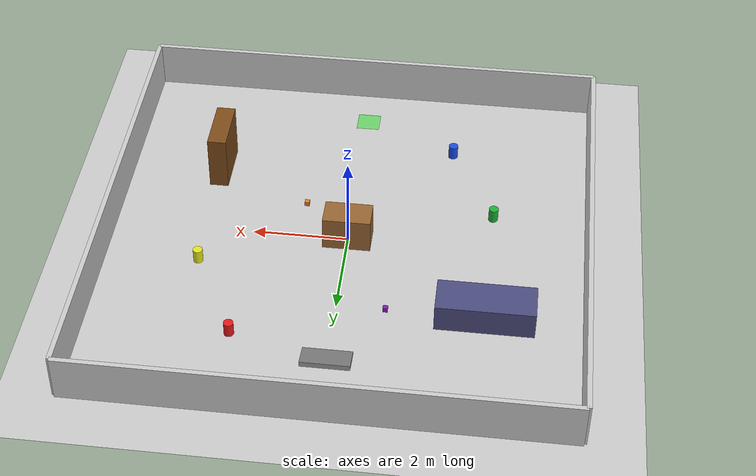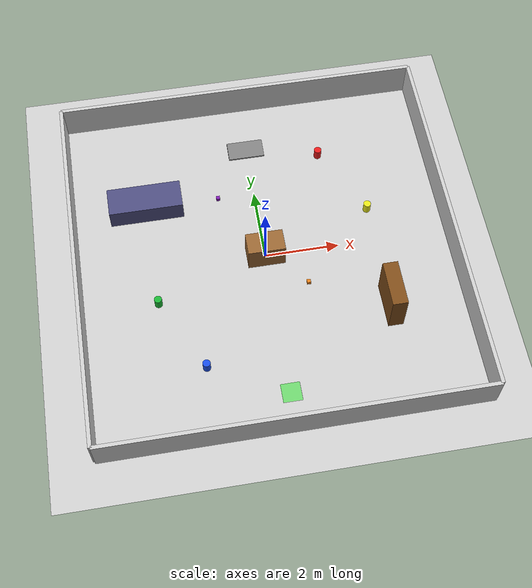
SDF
<?xml version="1.0"?>
<!--
  Advika 3.0 Simulation Playground World
  Gazebo Harmonic / ROS2 Jazzy compatible
  Includes: obstacles, colored cones, walls, and interactive elements
-->
<sdf version="1.6">
  <world name="advika_playground">

    <!-- Physics -->
    <physics type="ode">
      <max_step_size>0.001</max_step_size>
      <real_time_factor>1.0</real_time_factor>
      <real_time_update_rate>1000</real_time_update_rate>
    </physics>

    <!-- Scene -->
    <scene>
      <ambient>0.4 0.4 0.4 1</ambient>
      <background>0.7 0.8 0.9 1</background>
      <shadows>true</shadows>
    </scene>

    <!-- Ground Plane -->
    <model name="ground_plane">
      <static>true</static>
      <link name="link">
        <collision name="collision">
          <geometry>
            <plane><normal>0 0 1</normal><size>100 100</size></plane>
          </geometry>
        </collision>
        <visual name="visual">
          <geometry>
            <plane><normal>0 0 1</normal><size>100 100</size></plane>
          </geometry>
          <material>
            <ambient>0.8 0.8 0.8 1</ambient>
            <diffuse>0.8 0.8 0.8 1</diffuse>
          </material>
        </visual>
      </link>
    </model>

    <!-- ==================== ROOM BOUNDARIES ==================== -->
    <!-- North Wall -->
    <model name="wall_north">
      <static>true</static>
      <pose>0 5 0.5 0 0 0</pose>
      <link name="link">
        <collision name="collision">
          <geometry>
            <box><size>10 0.1 1.0</size></box>
          </geometry>
        </collision>
        <visual name="visual">
          <geometry>
            <box><size>10 0.1 1.0</size></box>
          </geometry>
          <material>
            <ambient>0.8 0.8 0.8 1</ambient>
            <diffuse>0.8 0.8 0.8 1</diffuse>
          </material>
        </visual>
      </link>
    </model>

    <!-- South Wall -->
    <model name="wall_south">
      <static>true</static>
      <pose>0 -5 0.5 0 0 0</pose>
      <link name="link">
        <collision name="collision">
          <geometry>
            <box><size>10 0.1 1.0</size></box>
          </geometry>
        </collision>
        <visual name="visual">
          <geometry>
            <box><size>10 0.1 1.0</size></box>
          </geometry>
          <material>
            <ambient>0.8 0.8 0.8 1</ambient>
            <diffuse>0.8 0.8 0.8 1</diffuse>
          </material>
        </visual>
      </link>
    </model>

    <!-- East Wall -->
    <model name="wall_east">
      <static>true</static>
      <pose>5 0 0.5 0 0 0</pose>
      <link name="link">
        <collision name="collision">
          <geometry>
            <box><size>0.1 10 1.0</size></box>
          </geometry>
        </collision>
        <visual name="visual">
          <geometry>
            <box><size>0.1 10 1.0</size></box>
          </geometry>
          <material>
            <ambient>0.8 0.8 0.8 1</ambient>
            <diffuse>0.8 0.8 0.8 1</diffuse>
          </material>
        </visual>
      </link>
    </model>

    <!-- West Wall -->
    <model name="wall_west">
      <static>true</static>
      <pose>-5 0 0.5 0 0 0</pose>
      <link name="link">
        <collision name="collision">
          <geometry>
            <box><size>0.1 10 1.0</size></box>
          </geometry>
        </collision>
        <visual name="visual">
          <geometry>
            <box><size>0.1 10 1.0</size></box>
          </geometry>
          <material>
            <ambient>0.8 0.8 0.8 1</ambient>
            <diffuse>0.8 0.8 0.8 1</diffuse>
          </material>
        </visual>
      </link>
    </model>

    <!-- ==================== OBSTACLES ==================== -->
    <!-- Central Table -->
    <model name="table">
      <static>true</static>
      <pose>0 0 0.375 0 0 0</pose>
      <link name="link">
        <collision name="collision">
          <geometry>
            <box><size>1.0 0.6 0.75</size></box>
          </geometry>
        </collision>
        <visual name="visual">
          <geometry>
            <box><size>1.0 0.6 0.75</size></box>
          </geometry>
          <material>
            <ambient>0.6 0.4 0.2 1</ambient>
            <diffuse>0.6 0.4 0.2 1</diffuse>
          </material>
        </visual>
      </link>
    </model>

    <!-- Sofa -->
    <model name="sofa">
      <static>true</static>
      <pose>-3 2 0.3 0 0 0</pose>
      <link name="link">
        <collision name="collision">
          <geometry>
            <box><size>2.0 0.8 0.6</size></box>
          </geometry>
        </collision>
        <visual name="visual">
          <geometry>
            <box><size>2.0 0.8 0.6</size></box>
          </geometry>
          <material>
            <ambient>0.3 0.3 0.5 1</ambient>
            <diffuse>0.3 0.3 0.5 1</diffuse>
          </material>
        </visual>
      </link>
    </model>

    <!-- Bookshelf -->
    <model name="bookshelf">
      <static>true</static>
      <pose>3 -2 0.6 0 0 0</pose>
      <link name="link">
        <collision name="collision">
          <geometry>
            <box><size>0.4 1.2 1.2</size></box>
          </geometry>
        </collision>
        <visual name="visual">
          <geometry>
            <box><size>0.4 1.2 1.2</size></box>
          </geometry>
          <material>
            <ambient>0.5 0.3 0.1 1</ambient>
            <diffuse>0.5 0.3 0.1 1</diffuse>
          </material>
        </visual>
      </link>
    </model>

    <!-- ==================== COLORED CONES (Navigation Targets) ==================== -->
    <!-- Red Cone -->
    <model name="cone_red">
      <static>true</static>
      <pose>2 3 0.15 0 0 0</pose>
      <link name="link">
        <collision name="collision">
          <geometry>
            <cylinder><radius>0.1</radius><length>0.3</length></cylinder>
          </geometry>
        </collision>
        <visual name="visual">
          <geometry>
            <cylinder><radius>0.1</radius><length>0.3</length></cylinder>
          </geometry>
          <material>
            <ambient>0.9 0.1 0.1 1</ambient>
            <diffuse>0.9 0.1 0.1 1</diffuse>
          </material>
        </visual>
      </link>
    </model>

    <!-- Blue Cone -->
    <model name="cone_blue">
      <static>true</static>
      <pose>-2 -3 0.15 0 0 0</pose>
      <link name="link">
        <collision name="collision">
          <geometry>
            <cylinder><radius>0.1</radius><length>0.3</length></cylinder>
          </geometry>
        </collision>
        <visual name="visual">
          <geometry>
            <cylinder><radius>0.1</radius><length>0.3</length></cylinder>
          </geometry>
          <material>
            <ambient>0.1 0.3 0.9 1</ambient>
            <diffuse>0.1 0.3 0.9 1</diffuse>
          </material>
        </visual>
      </link>
    </model>

    <!-- Green Cone -->
    <model name="cone_green">
      <static>true</static>
      <pose>-3 -1 0.15 0 0 0</pose>
      <link name="link">
        <collision name="collision">
          <geometry>
            <cylinder><radius>0.1</radius><length>0.3</length></cylinder>
          </geometry>
        </collision>
        <visual name="visual">
          <geometry>
            <cylinder><radius>0.1</radius><length>0.3</length></cylinder>
          </geometry>
          <material>
            <ambient>0.1 0.7 0.2 1</ambient>
            <diffuse>0.1 0.7 0.2 1</diffuse>
          </material>
        </visual>
      </link>
    </model>

    <!-- Yellow Cone -->
    <model name="cone_yellow">
      <static>true</static>
      <pose>3 1 0.15 0 0 0</pose>
      <link name="link">
        <collision name="collision">
          <geometry>
            <cylinder><radius>0.1</radius><length>0.3</length></cylinder>
          </geometry>
        </collision>
        <visual name="visual">
          <geometry>
            <cylinder><radius>0.1</radius><length>0.3</length></cylinder>
          </geometry>
          <material>
            <ambient>0.9 0.9 0.1 1</ambient>
            <diffuse>0.9 0.9 0.1 1</diffuse>
          </material>
        </visual>
      </link>
    </model>

    <!-- ==================== SMALL OBSTACLES ==================== -->
    <!-- Toy Block 1 -->
    <model name="block_1">
      <static>false</static>
      <pose>1 -1 0.05 0 0 0</pose>
      <link name="link">
        <inertial>
          <mass>0.1</mass>
          <inertia ixx="0.0001" ixy="0" ixz="0" iyy="0.0001" iyz="0" izz="0.0001"/>
        </inertial>
        <collision name="collision">
          <geometry>
            <box><size>0.1 0.1 0.1</size></box>
          </geometry>
        </collision>
        <visual name="visual">
          <geometry>
            <box><size>0.1 0.1 0.1</size></box>
          </geometry>
          <material>
            <ambient>0.9 0.5 0.1 1</ambient>
            <diffuse>0.9 0.5 0.1 1</diffuse>
          </material>
        </visual>
      </link>
    </model>

    <!-- Toy Block 2 -->
    <model name="block_2">
      <static>false</static>
      <pose>-1 2 0.05 0 0 0</pose>
      <link name="link">
        <inertial>
          <mass>0.1</mass>
          <inertia ixx="0.0001" ixy="0" ixz="0" iyy="0.0001" iyz="0" izz="0.0001"/>
        </inertial>
        <collision name="collision">
          <geometry>
            <box><size>0.1 0.1 0.1</size></box>
          </geometry>
        </collision>
        <visual name="visual">
          <geometry>
            <box><size>0.1 0.1 0.1</size></box>
          </geometry>
          <material>
            <ambient>0.5 0.1 0.7 1</ambient>
            <diffuse>0.5 0.1 0.7 1</diffuse>
          </material>
        </visual>
      </link>
    </model>

    <!-- ==================== RAMP (For testing inclines) ==================== -->
    <model name="ramp">
      <static>true</static>
      <pose>0 3.5 0.05 0.2 0 0</pose>
      <link name="link">
        <collision name="collision">
          <geometry>
            <box><size>1.0 0.5 0.1</size></box>
          </geometry>
        </collision>
        <visual name="visual">
          <geometry>
            <box><size>1.0 0.5 0.1</size></box>
          </geometry>
          <material>
            <ambient>0.5 0.5 0.5 1</ambient>
            <diffuse>0.5 0.5 0.5 1</diffuse>
          </material>
        </visual>
      </link>
    </model>

    <!-- ==================== START ZONE MARKER ==================== -->
    <model name="start_zone">
      <static>true</static>
      <pose>0 -4 0.001 0 0 0</pose>
      <link name="link">
        <visual name="visual">
          <geometry>
            <plane><normal>0 0 1</normal><size>0.5 0.5</size></plane>
          </geometry>
          <material>
            <ambient>0.1 0.9 0.1 0.5</ambient>
            <diffuse>0.1 0.9 0.1 0.5</diffuse>
          </material>
        </visual>
      </link>
    </model>

    <!-- ==================== LIGHTING ==================== -->
    <light name="sun" type="directional">
      <pose>0 0 10 0 0 0</pose>
      <cast_shadows>true</cast_shadows>
      <diffuse>0.8 0.8 0.8 1</diffuse>
      <specular>0.2 0.2 0.2 1</specular>
      <attenuation>
        <range>1000</range>
        <constant>0.9</constant>
        <linear>0.01</linear>
        <quadratic>0.001</quadratic>
      </attenuation>
      <direction>-0.5 0.1 -0.9</direction>
    </light>

    <light name="point_light_1" type="point">
      <pose>0 0 3 0 0 0</pose>
      <diffuse>0.5 0.5 0.5 1</diffuse>
      <specular>0.1 0.1 0.1 1</specular>
      <attenuation>
        <range>10</range>
        <constant>0.5</constant>
        <linear>0.1</linear>
        <quadratic>0.01</quadratic>
      </attenuation>
    </light>

  </world>
</sdf>
